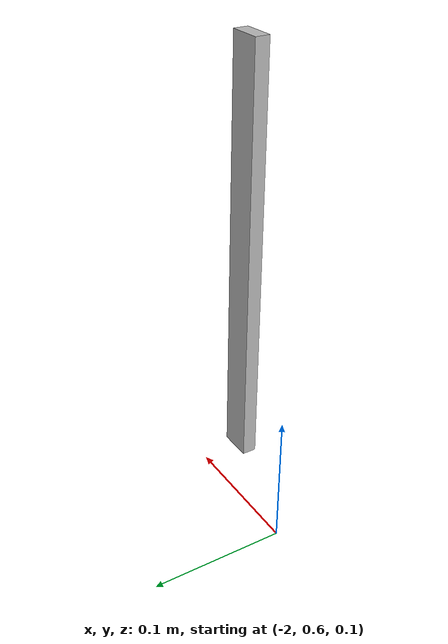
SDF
<?xml version='1.0'?>
<sdf version="1.6">
  <model name="traffic_bar_up">
    <pose frame=''>0 0 0 0 0 0</pose>
    <link name="traffic_bar_up">
      <collision name="collision">
        <pose frame=''>-1.95 0.6 0.3 0 1.57 0</pose>
        <geometry>
          <box>
            <size>0.3 0.01 0.023</size>
          </box>
        </geometry>
      </collision>
      <visual name="visual">
        <pose frame=''>-1.95 0.6 0.3 0 1.57 0</pose>
        <geometry>
          <box>
            <size>0.3 0.01 0.023</size>
          </box>
        </geometry>
        <material>
          <script>
            <uri>file:///home/david/my_ros2_ws/src/turtlebot3_autobot/map/traffic_bar_up/materials/scripts/traffic_bar.material</uri>
            <uri>file:///home/david/my_ros2_ws/src/turtlebot3_autobot/map/traffic_bar_up/materials/textures/traffic_bar.png</uri>
            <name>traffic_bar</name>
          </script>
        </material>
      </visual>
    </link>
    <static>1</static>
  </model>
</sdf>
